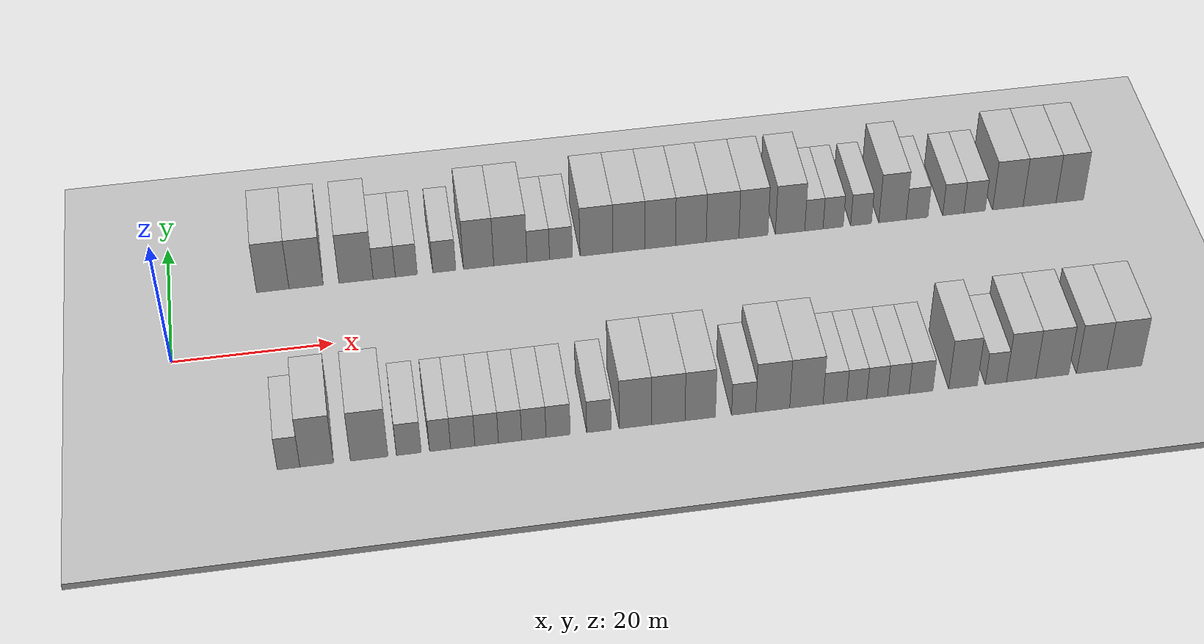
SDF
<sdf version="1.6">
 <world name="default">
  <include><name>ground_plane_1</name><uri>model://HANNAS_ground_plane</uri></include>
  <include>
   <name>ground_plane_2</name>
   <uri>model://HANNAS_ground_plane</uri>
   <pose>100 0 0  0 0 0</pose>
  </include>
  <model name="building_1">
   <static>1</static>
   <pose>13.0584 15.0000 0 0.000000 0.000000 1.570796</pose>
   <link name="link">
    <pose>0 0 4.50 0 0 0</pose>
    <collision name="collision"><geometry><box><size>10.0000 4.1168 9.0000</size></box></geometry></collision>
    <visual name="visual">
     <cast_shadows>0</cast_shadows>
     <geometry><box><size>10.0000 4.1168 9.0000</size></box></geometry>
     <material>
      <script>
       <uri>model://HANNAS_wall/materials/scripts</uri>
       <uri>model://HANNAS_wall/materials/textures</uri>
       <name>vrc/HANNAS_wall</name>
      </script>
     </material>
    </visual>
   </link>
  </model>
  <model name="building_2">
   <static>1</static>
   <pose>17.2955 15.0000 0 0.000000 0.000000 1.570796</pose>
   <link name="link">
    <pose>0 0 4.50 0 0 0</pose>
    <collision name="collision"><geometry><box><size>10.0000 4.3573 9.0000</size></box></geometry></collision>
    <visual name="visual">
     <cast_shadows>0</cast_shadows>
     <geometry><box><size>10.0000 4.3573 9.0000</size></box></geometry>
     <material>
      <script>
       <uri>model://HANNAS_wall/materials/scripts</uri>
       <uri>model://HANNAS_wall/materials/textures</uri>
       <name>vrc/HANNAS_wall</name>
      </script>
     </material>
    </visual>
   </link>
  </model>
  <model name="building_3">
   <static>1</static>
   <pose>23.6623 15.0000 0 0.000000 0.000000 1.570796</pose>
   <link name="link">
    <pose>0 0 4.50 0 0 0</pose>
    <collision name="collision"><geometry><box><size>10.0000 4.3765 9.0000</size></box></geometry></collision>
    <visual name="visual">
     <cast_shadows>0</cast_shadows>
     <geometry><box><size>10.0000 4.3765 9.0000</size></box></geometry>
     <material>
      <script>
       <uri>model://HANNAS_wall/materials/scripts</uri>
       <uri>model://HANNAS_wall/materials/textures</uri>
       <name>vrc/HANNAS_wall</name>
      </script>
     </material>
    </visual>
   </link>
  </model>
  <model name="building_4">
   <static>1</static>
   <pose>27.2714 15.0000 0 0.000000 0.000000 1.570796</pose>
   <link name="link">
    <pose>0 0 3.00 0 0 0</pose>
    <collision name="collision"><geometry><box><size>10.0000 2.8415 6.0000</size></box></geometry></collision>
    <visual name="visual">
     <cast_shadows>0</cast_shadows>
     <geometry><box><size>10.0000 2.8415 6.0000</size></box></geometry>
     <material>
      <script>
       <uri>model://HANNAS_wall/materials/scripts</uri>
       <uri>model://HANNAS_wall/materials/textures</uri>
       <name>vrc/HANNAS_wall</name>
      </script>
     </material>
    </visual>
   </link>
  </model>
  <model name="building_5">
   <static>1</static>
   <pose>30.1008 15.0000 0 0.000000 0.000000 1.570796</pose>
   <link name="link">
    <pose>0 0 3.00 0 0 0</pose>
    <collision name="collision"><geometry><box><size>10.0000 2.8173 6.0000</size></box></geometry></collision>
    <visual name="visual">
     <cast_shadows>0</cast_shadows>
     <geometry><box><size>10.0000 2.8173 6.0000</size></box></geometry>
     <material>
      <script>
       <uri>model://HANNAS_wall/materials/scripts</uri>
       <uri>model://HANNAS_wall/materials/textures</uri>
       <name>vrc/HANNAS_wall</name>
      </script>
     </material>
    </visual>
   </link>
  </model>
  <model name="building_6">
   <static>1</static>
   <pose>34.9873 15.0000 0 0.000000 0.000000 1.570796</pose>
   <link name="link">
    <pose>0 0 3.00 0 0 0</pose>
    <collision name="collision"><geometry><box><size>10.0000 2.9558 6.0000</size></box></geometry></collision>
    <visual name="visual">
     <cast_shadows>0</cast_shadows>
     <geometry><box><size>10.0000 2.9558 6.0000</size></box></geometry>
     <material>
      <script>
       <uri>model://HANNAS_wall/materials/scripts</uri>
       <uri>model://HANNAS_wall/materials/textures</uri>
       <name>vrc/HANNAS_wall</name>
      </script>
     </material>
    </visual>
   </link>
  </model>
  <model name="building_7">
   <static>1</static>
   <pose>39.4198 15.0000 0 0.000000 0.000000 1.570796</pose>
   <link name="link">
    <pose>0 0 4.50 0 0 0</pose>
    <collision name="collision"><geometry><box><size>10.0000 3.9092 9.0000</size></box></geometry></collision>
    <visual name="visual">
     <cast_shadows>0</cast_shadows>
     <geometry><box><size>10.0000 3.9092 9.0000</size></box></geometry>
     <material>
      <script>
       <uri>model://HANNAS_wall/materials/scripts</uri>
       <uri>model://HANNAS_wall/materials/textures</uri>
       <name>vrc/HANNAS_wall</name>
      </script>
     </material>
    </visual>
   </link>
  </model>
  <model name="building_8">
   <static>1</static>
   <pose>43.5342 15.0000 0 0.000000 0.000000 1.570796</pose>
   <link name="link">
    <pose>0 0 4.50 0 0 0</pose>
    <collision name="collision"><geometry><box><size>10.0000 4.3196 9.0000</size></box></geometry></collision>
    <visual name="visual">
     <cast_shadows>0</cast_shadows>
     <geometry><box><size>10.0000 4.3196 9.0000</size></box></geometry>
     <material>
      <script>
       <uri>model://HANNAS_wall/materials/scripts</uri>
       <uri>model://HANNAS_wall/materials/textures</uri>
       <name>vrc/HANNAS_wall</name>
      </script>
     </material>
    </visual>
   </link>
  </model>
  <model name="building_9">
   <static>1</static>
   <pose>47.1552 15.0000 0 0.000000 0.000000 1.570796</pose>
   <link name="link">
    <pose>0 0 3.00 0 0 0</pose>
    <collision name="collision"><geometry><box><size>10.0000 2.9224 6.0000</size></box></geometry></collision>
    <visual name="visual">
     <cast_shadows>0</cast_shadows>
     <geometry><box><size>10.0000 2.9224 6.0000</size></box></geometry>
     <material>
      <script>
       <uri>model://HANNAS_wall/materials/scripts</uri>
       <uri>model://HANNAS_wall/materials/textures</uri>
       <name>vrc/HANNAS_wall</name>
      </script>
     </material>
    </visual>
   </link>
  </model>
  <model name="building_10">
   <static>1</static>
   <pose>50.1067 15.0000 0 0.000000 0.000000 1.570796</pose>
   <link name="link">
    <pose>0 0 3.00 0 0 0</pose>
    <collision name="collision"><geometry><box><size>10.0000 2.9807 6.0000</size></box></geometry></collision>
    <visual name="visual">
     <cast_shadows>0</cast_shadows>
     <geometry><box><size>10.0000 2.9807 6.0000</size></box></geometry>
     <material>
      <script>
       <uri>model://HANNAS_wall/materials/scripts</uri>
       <uri>model://HANNAS_wall/materials/textures</uri>
       <name>vrc/HANNAS_wall</name>
      </script>
     </material>
    </visual>
   </link>
  </model>
  <model name="building_11">
   <static>1</static>
   <pose>54.7344 15.0000 0 0.000000 0.000000 1.570796</pose>
   <link name="link">
    <pose>0 0 4.50 0 0 0</pose>
    <collision name="collision"><geometry><box><size>10.0000 4.2747 9.0000</size></box></geometry></collision>
    <visual name="visual">
     <cast_shadows>0</cast_shadows>
     <geometry><box><size>10.0000 4.2747 9.0000</size></box></geometry>
     <material>
      <script>
       <uri>model://HANNAS_wall/materials/scripts</uri>
       <uri>model://HANNAS_wall/materials/textures</uri>
       <name>vrc/HANNAS_wall</name>
      </script>
     </material>
    </visual>
   </link>
  </model>
  <model name="building_12">
   <static>1</static>
   <pose>58.9776 15.0000 0 0.000000 0.000000 1.570796</pose>
   <link name="link">
    <pose>0 0 4.50 0 0 0</pose>
    <collision name="collision"><geometry><box><size>10.0000 4.2117 9.0000</size></box></geometry></collision>
    <visual name="visual">
     <cast_shadows>0</cast_shadows>
     <geometry><box><size>10.0000 4.2117 9.0000</size></box></geometry>
     <material>
      <script>
       <uri>model://HANNAS_wall/materials/scripts</uri>
       <uri>model://HANNAS_wall/materials/textures</uri>
       <name>vrc/HANNAS_wall</name>
      </script>
     </material>
    </visual>
   </link>
  </model>
  <model name="building_13">
   <static>1</static>
   <pose>63.0904 15.0000 0 0.000000 0.000000 1.570796</pose>
   <link name="link">
    <pose>0 0 4.50 0 0 0</pose>
    <collision name="collision"><geometry><box><size>10.0000 4.0140 9.0000</size></box></geometry></collision>
    <visual name="visual">
     <cast_shadows>0</cast_shadows>
     <geometry><box><size>10.0000 4.0140 9.0000</size></box></geometry>
     <material>
      <script>
       <uri>model://HANNAS_wall/materials/scripts</uri>
       <uri>model://HANNAS_wall/materials/textures</uri>
       <name>vrc/HANNAS_wall</name>
      </script>
     </material>
    </visual>
   </link>
  </model>
  <model name="building_14">
   <static>1</static>
   <pose>67.1182 15.0000 0 0.000000 0.000000 1.570796</pose>
   <link name="link">
    <pose>0 0 4.50 0 0 0</pose>
    <collision name="collision"><geometry><box><size>10.0000 4.0417 9.0000</size></box></geometry></collision>
    <visual name="visual">
     <cast_shadows>0</cast_shadows>
     <geometry><box><size>10.0000 4.0417 9.0000</size></box></geometry>
     <material>
      <script>
       <uri>model://HANNAS_wall/materials/scripts</uri>
       <uri>model://HANNAS_wall/materials/textures</uri>
       <name>vrc/HANNAS_wall</name>
      </script>
     </material>
    </visual>
   </link>
  </model>
  <model name="building_15">
   <static>1</static>
   <pose>71.3008 15.0000 0 0.000000 0.000000 1.570796</pose>
   <link name="link">
    <pose>0 0 4.50 0 0 0</pose>
    <collision name="collision"><geometry><box><size>10.0000 4.3233 9.0000</size></box></geometry></collision>
    <visual name="visual">
     <cast_shadows>0</cast_shadows>
     <geometry><box><size>10.0000 4.3233 9.0000</size></box></geometry>
     <material>
      <script>
       <uri>model://HANNAS_wall/materials/scripts</uri>
       <uri>model://HANNAS_wall/materials/textures</uri>
       <name>vrc/HANNAS_wall</name>
      </script>
     </material>
    </visual>
   </link>
  </model>
  <model name="building_16">
   <static>1</static>
   <pose>75.3823 15.0000 0 0.000000 0.000000 1.570796</pose>
   <link name="link">
    <pose>0 0 4.50 0 0 0</pose>
    <collision name="collision"><geometry><box><size>10.0000 3.8398 9.0000</size></box></geometry></collision>
    <visual name="visual">
     <cast_shadows>0</cast_shadows>
     <geometry><box><size>10.0000 3.8398 9.0000</size></box></geometry>
     <material>
      <script>
       <uri>model://HANNAS_wall/materials/scripts</uri>
       <uri>model://HANNAS_wall/materials/textures</uri>
       <name>vrc/HANNAS_wall</name>
      </script>
     </material>
    </visual>
   </link>
  </model>
  <model name="building_17">
   <static>1</static>
   <pose>80.2570 15.0000 0 0.000000 0.000000 1.570796</pose>
   <link name="link">
    <pose>0 0 4.50 0 0 0</pose>
    <collision name="collision"><geometry><box><size>10.0000 3.9096 9.0000</size></box></geometry></collision>
    <visual name="visual">
     <cast_shadows>0</cast_shadows>
     <geometry><box><size>10.0000 3.9096 9.0000</size></box></geometry>
     <material>
      <script>
       <uri>model://HANNAS_wall/materials/scripts</uri>
       <uri>model://HANNAS_wall/materials/textures</uri>
       <name>vrc/HANNAS_wall</name>
      </script>
     </material>
    </visual>
   </link>
  </model>
  <model name="building_18">
   <static>1</static>
   <pose>83.4359 15.0000 0 0.000000 0.000000 1.570796</pose>
   <link name="link">
    <pose>0 0 3.00 0 0 0</pose>
    <collision name="collision"><geometry><box><size>10.0000 2.4482 6.0000</size></box></geometry></collision>
    <visual name="visual">
     <cast_shadows>0</cast_shadows>
     <geometry><box><size>10.0000 2.4482 6.0000</size></box></geometry>
     <material>
      <script>
       <uri>model://HANNAS_wall/materials/scripts</uri>
       <uri>model://HANNAS_wall/materials/textures</uri>
       <name>vrc/HANNAS_wall</name>
      </script>
     </material>
    </visual>
   </link>
  </model>
  <model name="building_19">
   <static>1</static>
   <pose>86.0006 15.0000 0 0.000000 0.000000 1.570796</pose>
   <link name="link">
    <pose>0 0 3.00 0 0 0</pose>
    <collision name="collision"><geometry><box><size>10.0000 2.6813 6.0000</size></box></geometry></collision>
    <visual name="visual">
     <cast_shadows>0</cast_shadows>
     <geometry><box><size>10.0000 2.6813 6.0000</size></box></geometry>
     <material>
      <script>
       <uri>model://HANNAS_wall/materials/scripts</uri>
       <uri>model://HANNAS_wall/materials/textures</uri>
       <name>vrc/HANNAS_wall</name>
      </script>
     </material>
    </visual>
   </link>
  </model>
  <model name="building_20">
   <static>1</static>
   <pose>89.7267 15.0000 0 0.000000 0.000000 1.570796</pose>
   <link name="link">
    <pose>0 0 3.00 0 0 0</pose>
    <collision name="collision"><geometry><box><size>10.0000 2.7710 6.0000</size></box></geometry></collision>
    <visual name="visual">
     <cast_shadows>0</cast_shadows>
     <geometry><box><size>10.0000 2.7710 6.0000</size></box></geometry>
     <material>
      <script>
       <uri>model://HANNAS_wall/materials/scripts</uri>
       <uri>model://HANNAS_wall/materials/textures</uri>
       <name>vrc/HANNAS_wall</name>
      </script>
     </material>
    </visual>
   </link>
  </model>
  <model name="building_21">
   <static>1</static>
   <pose>93.9495 15.0000 0 0.000000 0.000000 1.570796</pose>
   <link name="link">
    <pose>0 0 4.50 0 0 0</pose>
    <collision name="collision"><geometry><box><size>10.0000 3.6744 9.0000</size></box></geometry></collision>
    <visual name="visual">
     <cast_shadows>0</cast_shadows>
     <geometry><box><size>10.0000 3.6744 9.0000</size></box></geometry>
     <material>
      <script>
       <uri>model://HANNAS_wall/materials/scripts</uri>
       <uri>model://HANNAS_wall/materials/textures</uri>
       <name>vrc/HANNAS_wall</name>
      </script>
     </material>
    </visual>
   </link>
  </model>
  <model name="building_22">
   <static>1</static>
   <pose>97.2493 15.0000 0 0.000000 0.000000 1.570796</pose>
   <link name="link">
    <pose>0 0 3.00 0 0 0</pose>
    <collision name="collision"><geometry><box><size>10.0000 2.9253 6.0000</size></box></geometry></collision>
    <visual name="visual">
     <cast_shadows>0</cast_shadows>
     <geometry><box><size>10.0000 2.9253 6.0000</size></box></geometry>
     <material>
      <script>
       <uri>model://HANNAS_wall/materials/scripts</uri>
       <uri>model://HANNAS_wall/materials/textures</uri>
       <name>vrc/HANNAS_wall</name>
      </script>
     </material>
    </visual>
   </link>
  </model>
  <model name="building_23">
   <static>1</static>
   <pose>102.1418 15.0000 0 0.000000 0.000000 1.570796</pose>
   <link name="link">
    <pose>0 0 3.00 0 0 0</pose>
    <collision name="collision"><geometry><box><size>10.0000 2.8597 6.0000</size></box></geometry></collision>
    <visual name="visual">
     <cast_shadows>0</cast_shadows>
     <geometry><box><size>10.0000 2.8597 6.0000</size></box></geometry>
     <material>
      <script>
       <uri>model://HANNAS_wall/materials/scripts</uri>
       <uri>model://HANNAS_wall/materials/textures</uri>
       <name>vrc/HANNAS_wall</name>
      </script>
     </material>
    </visual>
   </link>
  </model>
  <model name="building_24">
   <static>1</static>
   <pose>105.0148 15.0000 0 0.000000 0.000000 1.570796</pose>
   <link name="link">
    <pose>0 0 3.00 0 0 0</pose>
    <collision name="collision"><geometry><box><size>10.0000 2.8864 6.0000</size></box></geometry></collision>
    <visual name="visual">
     <cast_shadows>0</cast_shadows>
     <geometry><box><size>10.0000 2.8864 6.0000</size></box></geometry>
     <material>
      <script>
       <uri>model://HANNAS_wall/materials/scripts</uri>
       <uri>model://HANNAS_wall/materials/textures</uri>
       <name>vrc/HANNAS_wall</name>
      </script>
     </material>
    </visual>
   </link>
  </model>
  <model name="building_25">
   <static>1</static>
   <pose>109.5327 15.0000 0 0.000000 0.000000 1.570796</pose>
   <link name="link">
    <pose>0 0 4.50 0 0 0</pose>
    <collision name="collision"><geometry><box><size>10.0000 4.1493 9.0000</size></box></geometry></collision>
    <visual name="visual">
     <cast_shadows>0</cast_shadows>
     <geometry><box><size>10.0000 4.1493 9.0000</size></box></geometry>
     <material>
      <script>
       <uri>model://HANNAS_wall/materials/scripts</uri>
       <uri>model://HANNAS_wall/materials/textures</uri>
       <name>vrc/HANNAS_wall</name>
      </script>
     </material>
    </visual>
   </link>
  </model>
  <model name="building_26">
   <static>1</static>
   <pose>113.8534 15.0000 0 0.000000 0.000000 1.570796</pose>
   <link name="link">
    <pose>0 0 4.50 0 0 0</pose>
    <collision name="collision"><geometry><box><size>10.0000 4.4923 9.0000</size></box></geometry></collision>
    <visual name="visual">
     <cast_shadows>0</cast_shadows>
     <geometry><box><size>10.0000 4.4923 9.0000</size></box></geometry>
     <material>
      <script>
       <uri>model://HANNAS_wall/materials/scripts</uri>
       <uri>model://HANNAS_wall/materials/textures</uri>
       <name>vrc/HANNAS_wall</name>
      </script>
     </material>
    </visual>
   </link>
  </model>
  <model name="building_27">
   <static>1</static>
   <pose>117.9723 15.0000 0 0.000000 0.000000 1.570796</pose>
   <link name="link">
    <pose>0 0 4.50 0 0 0</pose>
    <collision name="collision"><geometry><box><size>10.0000 3.7454 9.0000</size></box></geometry></collision>
    <visual name="visual">
     <cast_shadows>0</cast_shadows>
     <geometry><box><size>10.0000 3.7454 9.0000</size></box></geometry>
     <material>
      <script>
       <uri>model://HANNAS_wall/materials/scripts</uri>
       <uri>model://HANNAS_wall/materials/textures</uri>
       <name>vrc/HANNAS_wall</name>
      </script>
     </material>
    </visual>
   </link>
  </model>
  <model name="building_54">
   <static>1</static>
   <pose>13.3420 -15.0000 0 0.000000 0.000000 1.570796</pose>
   <link name="link">
    <pose>0 0 3.00 0 0 0</pose>
    <collision name="collision"><geometry><box><size>10.0000 2.6839 6.0000</size></box></geometry></collision>
    <visual name="visual">
     <cast_shadows>0</cast_shadows>
     <geometry><box><size>10.0000 2.6839 6.0000</size></box></geometry>
     <material>
      <script>
       <uri>model://HANNAS_wall/materials/scripts</uri>
       <uri>model://HANNAS_wall/materials/textures</uri>
       <name>vrc/HANNAS_wall</name>
      </script>
     </material>
    </visual>
   </link>
  </model>
  <model name="building_55">
   <static>1</static>
   <pose>16.6910 -15.0000 0 0.000000 0.000000 1.570796</pose>
   <link name="link">
    <pose>0 0 4.50 0 0 0</pose>
    <collision name="collision"><geometry><box><size>10.0000 4.0141 9.0000</size></box></geometry></collision>
    <visual name="visual">
     <cast_shadows>0</cast_shadows>
     <geometry><box><size>10.0000 4.0141 9.0000</size></box></geometry>
     <material>
      <script>
       <uri>model://HANNAS_wall/materials/scripts</uri>
       <uri>model://HANNAS_wall/materials/textures</uri>
       <name>vrc/HANNAS_wall</name>
      </script>
     </material>
    </visual>
   </link>
  </model>
  <model name="building_56">
   <static>1</static>
   <pose>22.9406 -15.0000 0 0.000000 0.000000 1.570796</pose>
   <link name="link">
    <pose>0 0 4.50 0 0 0</pose>
    <collision name="collision"><geometry><box><size>10.0000 4.4851 9.0000</size></box></geometry></collision>
    <visual name="visual">
     <cast_shadows>0</cast_shadows>
     <geometry><box><size>10.0000 4.4851 9.0000</size></box></geometry>
     <material>
      <script>
       <uri>model://HANNAS_wall/materials/scripts</uri>
       <uri>model://HANNAS_wall/materials/textures</uri>
       <name>vrc/HANNAS_wall</name>
      </script>
     </material>
    </visual>
   </link>
  </model>
  <model name="building_57">
   <static>1</static>
   <pose>27.6712 -15.0000 0 0.000000 0.000000 1.570796</pose>
   <link name="link">
    <pose>0 0 3.00 0 0 0</pose>
    <collision name="collision"><geometry><box><size>10.0000 2.9761 6.0000</size></box></geometry></collision>
    <visual name="visual">
     <cast_shadows>0</cast_shadows>
     <geometry><box><size>10.0000 2.9761 6.0000</size></box></geometry>
     <material>
      <script>
       <uri>model://HANNAS_wall/materials/scripts</uri>
       <uri>model://HANNAS_wall/materials/textures</uri>
       <name>vrc/HANNAS_wall</name>
      </script>
     </material>
    </visual>
   </link>
  </model>
  <model name="building_58">
   <static>1</static>
   <pose>31.4191 -15.0000 0 0.000000 0.000000 1.570796</pose>
   <link name="link">
    <pose>0 0 3.00 0 0 0</pose>
    <collision name="collision"><geometry><box><size>10.0000 2.5198 6.0000</size></box></geometry></collision>
    <visual name="visual">
     <cast_shadows>0</cast_shadows>
     <geometry><box><size>10.0000 2.5198 6.0000</size></box></geometry>
     <material>
      <script>
       <uri>model://HANNAS_wall/materials/scripts</uri>
       <uri>model://HANNAS_wall/materials/textures</uri>
       <name>vrc/HANNAS_wall</name>
      </script>
     </material>
    </visual>
   </link>
  </model>
  <model name="building_59">
   <static>1</static>
   <pose>34.1414 -15.0000 0 0.000000 0.000000 1.570796</pose>
   <link name="link">
    <pose>0 0 3.00 0 0 0</pose>
    <collision name="collision"><geometry><box><size>10.0000 2.9246 6.0000</size></box></geometry></collision>
    <visual name="visual">
     <cast_shadows>0</cast_shadows>
     <geometry><box><size>10.0000 2.9246 6.0000</size></box></geometry>
     <material>
      <script>
       <uri>model://HANNAS_wall/materials/scripts</uri>
       <uri>model://HANNAS_wall/materials/textures</uri>
       <name>vrc/HANNAS_wall</name>
      </script>
     </material>
    </visual>
   </link>
  </model>
  <model name="building_60">
   <static>1</static>
   <pose>37.0262 -15.0000 0 0.000000 0.000000 1.570796</pose>
   <link name="link">
    <pose>0 0 3.00 0 0 0</pose>
    <collision name="collision"><geometry><box><size>10.0000 2.8450 6.0000</size></box></geometry></collision>
    <visual name="visual">
     <cast_shadows>0</cast_shadows>
     <geometry><box><size>10.0000 2.8450 6.0000</size></box></geometry>
     <material>
      <script>
       <uri>model://HANNAS_wall/materials/scripts</uri>
       <uri>model://HANNAS_wall/materials/textures</uri>
       <name>vrc/HANNAS_wall</name>
      </script>
     </material>
    </visual>
   </link>
  </model>
  <model name="building_61">
   <static>1</static>
   <pose>39.8561 -15.0000 0 0.000000 0.000000 1.570796</pose>
   <link name="link">
    <pose>0 0 3.00 0 0 0</pose>
    <collision name="collision"><geometry><box><size>10.0000 2.8147 6.0000</size></box></geometry></collision>
    <visual name="visual">
     <cast_shadows>0</cast_shadows>
     <geometry><box><size>10.0000 2.8147 6.0000</size></box></geometry>
     <material>
      <script>
       <uri>model://HANNAS_wall/materials/scripts</uri>
       <uri>model://HANNAS_wall/materials/textures</uri>
       <name>vrc/HANNAS_wall</name>
      </script>
     </material>
    </visual>
   </link>
  </model>
  <model name="building_62">
   <static>1</static>
   <pose>42.7350 -15.0000 0 0.000000 0.000000 1.570796</pose>
   <link name="link">
    <pose>0 0 3.00 0 0 0</pose>
    <collision name="collision"><geometry><box><size>10.0000 2.9431 6.0000</size></box></geometry></collision>
    <visual name="visual">
     <cast_shadows>0</cast_shadows>
     <geometry><box><size>10.0000 2.9431 6.0000</size></box></geometry>
     <material>
      <script>
       <uri>model://HANNAS_wall/materials/scripts</uri>
       <uri>model://HANNAS_wall/materials/textures</uri>
       <name>vrc/HANNAS_wall</name>
      </script>
     </material>
    </visual>
   </link>
  </model>
  <model name="building_63">
   <static>1</static>
   <pose>45.6715 -15.0000 0 0.000000 0.000000 1.570796</pose>
   <link name="link">
    <pose>0 0 3.00 0 0 0</pose>
    <collision name="collision"><geometry><box><size>10.0000 2.9299 6.0000</size></box></geometry></collision>
    <visual name="visual">
     <cast_shadows>0</cast_shadows>
     <geometry><box><size>10.0000 2.9299 6.0000</size></box></geometry>
     <material>
      <script>
       <uri>model://HANNAS_wall/materials/scripts</uri>
       <uri>model://HANNAS_wall/materials/textures</uri>
       <name>vrc/HANNAS_wall</name>
      </script>
     </material>
    </visual>
   </link>
  </model>
  <model name="building_64">
   <static>1</static>
   <pose>50.6182 -15.0000 0 0.000000 0.000000 1.570796</pose>
   <link name="link">
    <pose>0 0 3.00 0 0 0</pose>
    <collision name="collision"><geometry><box><size>10.0000 2.9634 6.0000</size></box></geometry></collision>
    <visual name="visual">
     <cast_shadows>0</cast_shadows>
     <geometry><box><size>10.0000 2.9634 6.0000</size></box></geometry>
     <material>
      <script>
       <uri>model://HANNAS_wall/materials/scripts</uri>
       <uri>model://HANNAS_wall/materials/textures</uri>
       <name>vrc/HANNAS_wall</name>
      </script>
     </material>
    </visual>
   </link>
  </model>
  <model name="building_65">
   <static>1</static>
   <pose>55.0536 -15.0000 0 0.000000 0.000000 1.570796</pose>
   <link name="link">
    <pose>0 0 4.50 0 0 0</pose>
    <collision name="collision"><geometry><box><size>10.0000 3.9075 9.0000</size></box></geometry></collision>
    <visual name="visual">
     <cast_shadows>0</cast_shadows>
     <geometry><box><size>10.0000 3.9075 9.0000</size></box></geometry>
     <material>
      <script>
       <uri>model://HANNAS_wall/materials/scripts</uri>
       <uri>model://HANNAS_wall/materials/textures</uri>
       <name>vrc/HANNAS_wall</name>
      </script>
     </material>
    </visual>
   </link>
  </model>
  <model name="building_66">
   <static>1</static>
   <pose>59.0808 -15.0000 0 0.000000 0.000000 1.570796</pose>
   <link name="link">
    <pose>0 0 4.50 0 0 0</pose>
    <collision name="collision"><geometry><box><size>10.0000 4.1467 9.0000</size></box></geometry></collision>
    <visual name="visual">
     <cast_shadows>0</cast_shadows>
     <geometry><box><size>10.0000 4.1467 9.0000</size></box></geometry>
     <material>
      <script>
       <uri>model://HANNAS_wall/materials/scripts</uri>
       <uri>model://HANNAS_wall/materials/textures</uri>
       <name>vrc/HANNAS_wall</name>
      </script>
     </material>
    </visual>
   </link>
  </model>
  <model name="building_67">
   <static>1</static>
   <pose>63.0212 -15.0000 0 0.000000 0.000000 1.570796</pose>
   <link name="link">
    <pose>0 0 4.50 0 0 0</pose>
    <collision name="collision"><geometry><box><size>10.0000 3.7341 9.0000</size></box></geometry></collision>
    <visual name="visual">
     <cast_shadows>0</cast_shadows>
     <geometry><box><size>10.0000 3.7341 9.0000</size></box></geometry>
     <material>
      <script>
       <uri>model://HANNAS_wall/materials/scripts</uri>
       <uri>model://HANNAS_wall/materials/textures</uri>
       <name>vrc/HANNAS_wall</name>
      </script>
     </material>
    </visual>
   </link>
  </model>
  <model name="building_68">
   <static>1</static>
   <pose>68.3799 -15.0000 0 0.000000 0.000000 1.570796</pose>
   <link name="link">
    <pose>0 0 3.00 0 0 0</pose>
    <collision name="collision"><geometry><box><size>10.0000 2.9834 6.0000</size></box></geometry></collision>
    <visual name="visual">
     <cast_shadows>0</cast_shadows>
     <geometry><box><size>10.0000 2.9834 6.0000</size></box></geometry>
     <material>
      <script>
       <uri>model://HANNAS_wall/materials/scripts</uri>
       <uri>model://HANNAS_wall/materials/textures</uri>
       <name>vrc/HANNAS_wall</name>
      </script>
     </material>
    </visual>
   </link>
  </model>
  <model name="building_69">
   <static>1</static>
   <pose>71.9738 -15.0000 0 0.000000 0.000000 1.570796</pose>
   <link name="link">
    <pose>0 0 4.50 0 0 0</pose>
    <collision name="collision"><geometry><box><size>10.0000 4.2044 9.0000</size></box></geometry></collision>
    <visual name="visual">
     <cast_shadows>0</cast_shadows>
     <geometry><box><size>10.0000 4.2044 9.0000</size></box></geometry>
     <material>
      <script>
       <uri>model://HANNAS_wall/materials/scripts</uri>
       <uri>model://HANNAS_wall/materials/textures</uri>
       <name>vrc/HANNAS_wall</name>
      </script>
     </material>
    </visual>
   </link>
  </model>
  <model name="building_70">
   <static>1</static>
   <pose>76.1509 -15.0000 0 0.000000 0.000000 1.570796</pose>
   <link name="link">
    <pose>0 0 4.50 0 0 0</pose>
    <collision name="collision"><geometry><box><size>10.0000 4.1498 9.0000</size></box></geometry></collision>
    <visual name="visual">
     <cast_shadows>0</cast_shadows>
     <geometry><box><size>10.0000 4.1498 9.0000</size></box></geometry>
     <material>
      <script>
       <uri>model://HANNAS_wall/materials/scripts</uri>
       <uri>model://HANNAS_wall/materials/textures</uri>
       <name>vrc/HANNAS_wall</name>
      </script>
     </material>
    </visual>
   </link>
  </model>
  <model name="building_71">
   <static>1</static>
   <pose>79.6998 -15.0000 0 0.000000 0.000000 1.570796</pose>
   <link name="link">
    <pose>0 0 3.00 0 0 0</pose>
    <collision name="collision"><geometry><box><size>10.0000 2.9479 6.0000</size></box></geometry></collision>
    <visual name="visual">
     <cast_shadows>0</cast_shadows>
     <geometry><box><size>10.0000 2.9479 6.0000</size></box></geometry>
     <material>
      <script>
       <uri>model://HANNAS_wall/materials/scripts</uri>
       <uri>model://HANNAS_wall/materials/textures</uri>
       <name>vrc/HANNAS_wall</name>
      </script>
     </material>
    </visual>
   </link>
  </model>
  <model name="building_72">
   <static>1</static>
   <pose>82.4166 -15.0000 0 0.000000 0.000000 1.570796</pose>
   <link name="link">
    <pose>0 0 3.00 0 0 0</pose>
    <collision name="collision"><geometry><box><size>10.0000 2.4856 6.0000</size></box></geometry></collision>
    <visual name="visual">
     <cast_shadows>0</cast_shadows>
     <geometry><box><size>10.0000 2.4856 6.0000</size></box></geometry>
     <material>
      <script>
       <uri>model://HANNAS_wall/materials/scripts</uri>
       <uri>model://HANNAS_wall/materials/textures</uri>
       <name>vrc/HANNAS_wall</name>
      </script>
     </material>
    </visual>
   </link>
  </model>
  <model name="building_73">
   <static>1</static>
   <pose>84.9606 -15.0000 0 0.000000 0.000000 1.570796</pose>
   <link name="link">
    <pose>0 0 3.00 0 0 0</pose>
    <collision name="collision"><geometry><box><size>10.0000 2.6024 6.0000</size></box></geometry></collision>
    <visual name="visual">
     <cast_shadows>0</cast_shadows>
     <geometry><box><size>10.0000 2.6024 6.0000</size></box></geometry>
     <material>
      <script>
       <uri>model://HANNAS_wall/materials/scripts</uri>
       <uri>model://HANNAS_wall/materials/textures</uri>
       <name>vrc/HANNAS_wall</name>
      </script>
     </material>
    </visual>
   </link>
  </model>
  <model name="building_74">
   <static>1</static>
   <pose>87.6168 -15.0000 0 0.000000 0.000000 1.570796</pose>
   <link name="link">
    <pose>0 0 3.00 0 0 0</pose>
    <collision name="collision"><geometry><box><size>10.0000 2.7101 6.0000</size></box></geometry></collision>
    <visual name="visual">
     <cast_shadows>0</cast_shadows>
     <geometry><box><size>10.0000 2.7101 6.0000</size></box></geometry>
     <material>
      <script>
       <uri>model://HANNAS_wall/materials/scripts</uri>
       <uri>model://HANNAS_wall/materials/textures</uri>
       <name>vrc/HANNAS_wall</name>
      </script>
     </material>
    </visual>
   </link>
  </model>
  <model name="building_75">
   <static>1</static>
   <pose>90.4583 -15.0000 0 0.000000 0.000000 1.570796</pose>
   <link name="link">
    <pose>0 0 3.00 0 0 0</pose>
    <collision name="collision"><geometry><box><size>10.0000 2.9728 6.0000</size></box></geometry></collision>
    <visual name="visual">
     <cast_shadows>0</cast_shadows>
     <geometry><box><size>10.0000 2.9728 6.0000</size></box></geometry>
     <material>
      <script>
       <uri>model://HANNAS_wall/materials/scripts</uri>
       <uri>model://HANNAS_wall/materials/textures</uri>
       <name>vrc/HANNAS_wall</name>
      </script>
     </material>
    </visual>
   </link>
  </model>
  <model name="building_76">
   <static>1</static>
   <pose>95.7457 -15.0000 0 0.000000 0.000000 1.570796</pose>
   <link name="link">
    <pose>0 0 4.50 0 0 0</pose>
    <collision name="collision"><geometry><box><size>10.0000 3.6021 9.0000</size></box></geometry></collision>
    <visual name="visual">
     <cast_shadows>0</cast_shadows>
     <geometry><box><size>10.0000 3.6021 9.0000</size></box></geometry>
     <material>
      <script>
       <uri>model://HANNAS_wall/materials/scripts</uri>
       <uri>model://HANNAS_wall/materials/textures</uri>
       <name>vrc/HANNAS_wall</name>
      </script>
     </material>
    </visual>
   </link>
  </model>
  <model name="building_77">
   <static>1</static>
   <pose>99.8922 -15.0000 0 0.000000 0.000000 1.570796</pose>
   <link name="link">
    <pose>0 0 3.00 0 0 0</pose>
    <collision name="collision"><geometry><box><size>10.0000 2.6910 6.0000</size></box></geometry></collision>
    <visual name="visual">
     <cast_shadows>0</cast_shadows>
     <geometry><box><size>10.0000 2.6910 6.0000</size></box></geometry>
     <material>
      <script>
       <uri>model://HANNAS_wall/materials/scripts</uri>
       <uri>model://HANNAS_wall/materials/textures</uri>
       <name>vrc/HANNAS_wall</name>
      </script>
     </material>
    </visual>
   </link>
  </model>
  <model name="building_78">
   <static>1</static>
   <pose>103.0902 -15.0000 0 0.000000 0.000000 1.570796</pose>
   <link name="link">
    <pose>0 0 4.50 0 0 0</pose>
    <collision name="collision"><geometry><box><size>10.0000 3.7051 9.0000</size></box></geometry></collision>
    <visual name="visual">
     <cast_shadows>0</cast_shadows>
     <geometry><box><size>10.0000 3.7051 9.0000</size></box></geometry>
     <material>
      <script>
       <uri>model://HANNAS_wall/materials/scripts</uri>
       <uri>model://HANNAS_wall/materials/textures</uri>
       <name>vrc/HANNAS_wall</name>
      </script>
     </material>
    </visual>
   </link>
  </model>
  <model name="building_79">
   <static>1</static>
   <pose>107.0325 -15.0000 0 0.000000 0.000000 1.570796</pose>
   <link name="link">
    <pose>0 0 4.50 0 0 0</pose>
    <collision name="collision"><geometry><box><size>10.0000 4.1794 9.0000</size></box></geometry></collision>
    <visual name="visual">
     <cast_shadows>0</cast_shadows>
     <geometry><box><size>10.0000 4.1794 9.0000</size></box></geometry>
     <material>
      <script>
       <uri>model://HANNAS_wall/materials/scripts</uri>
       <uri>model://HANNAS_wall/materials/textures</uri>
       <name>vrc/HANNAS_wall</name>
      </script>
     </material>
    </visual>
   </link>
  </model>
  <model name="building_80">
   <static>1</static>
   <pose>112.0677 -15.0000 0 0.000000 0.000000 1.570796</pose>
   <link name="link">
    <pose>0 0 4.50 0 0 0</pose>
    <collision name="collision"><geometry><box><size>10.0000 3.8910 9.0000</size></box></geometry></collision>
    <visual name="visual">
     <cast_shadows>0</cast_shadows>
     <geometry><box><size>10.0000 3.8910 9.0000</size></box></geometry>
     <material>
      <script>
       <uri>model://HANNAS_wall/materials/scripts</uri>
       <uri>model://HANNAS_wall/materials/textures</uri>
       <name>vrc/HANNAS_wall</name>
      </script>
     </material>
    </visual>
   </link>
  </model>
  <model name="building_81">
   <static>1</static>
   <pose>116.2319 -15.0000 0 0.000000 0.000000 1.570796</pose>
   <link name="link">
    <pose>0 0 4.50 0 0 0</pose>
    <collision name="collision"><geometry><box><size>10.0000 4.4374 9.0000</size></box></geometry></collision>
    <visual name="visual">
     <cast_shadows>0</cast_shadows>
     <geometry><box><size>10.0000 4.4374 9.0000</size></box></geometry>
     <material>
      <script>
       <uri>model://HANNAS_wall/materials/scripts</uri>
       <uri>model://HANNAS_wall/materials/textures</uri>
       <name>vrc/HANNAS_wall</name>
      </script>
     </material>
    </visual>
   </link>
  </model>
 </world>
</sdf>
